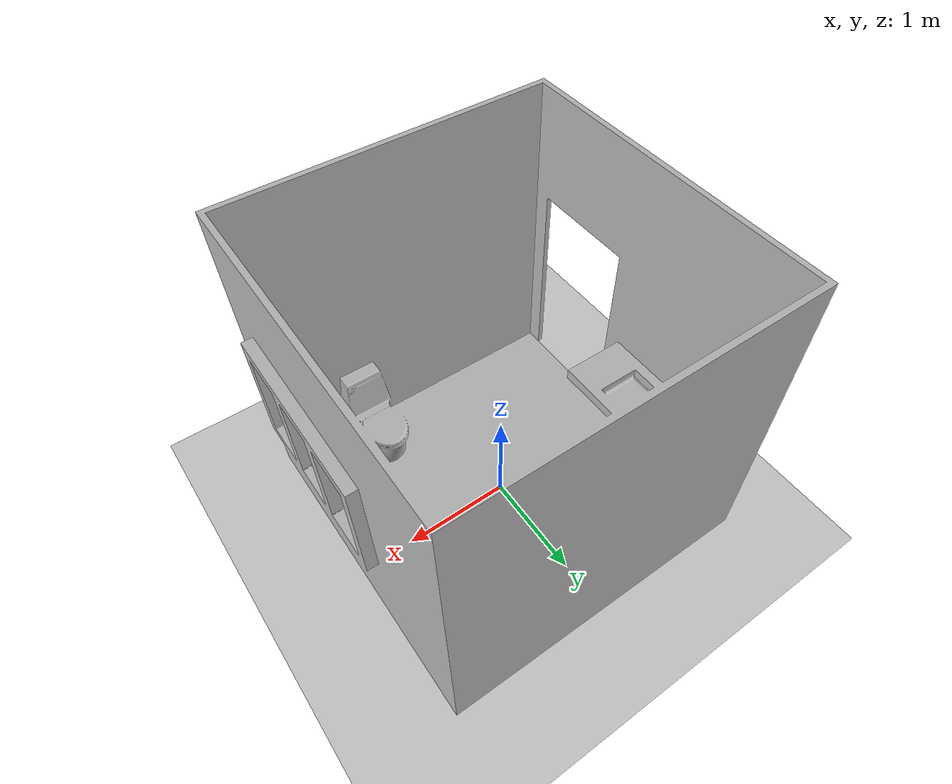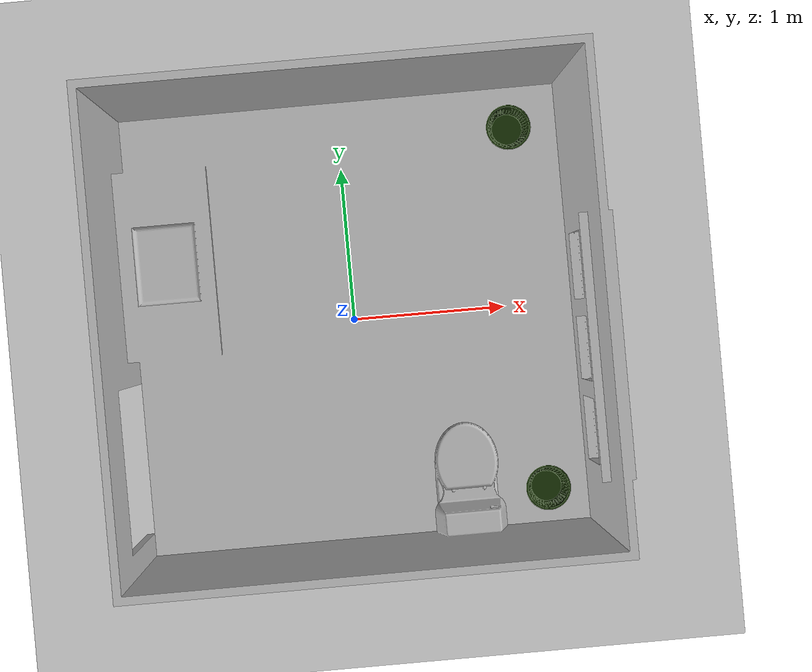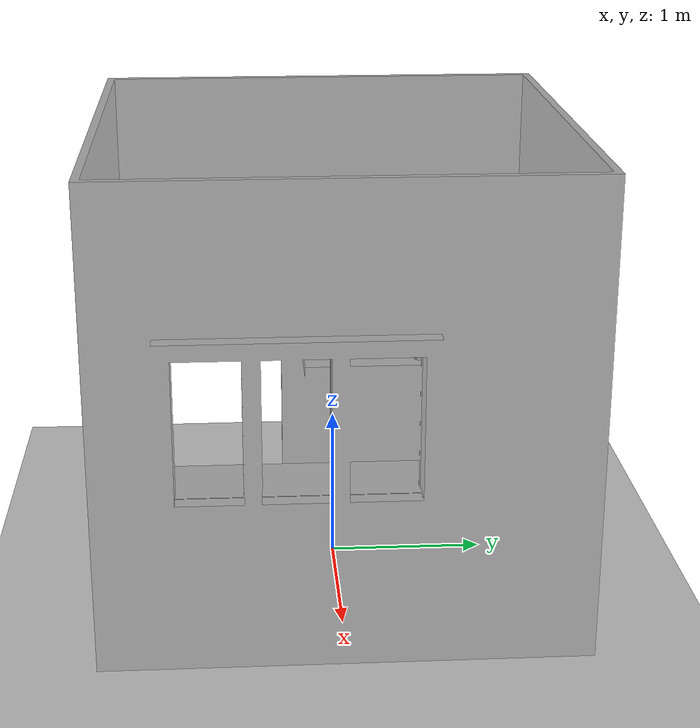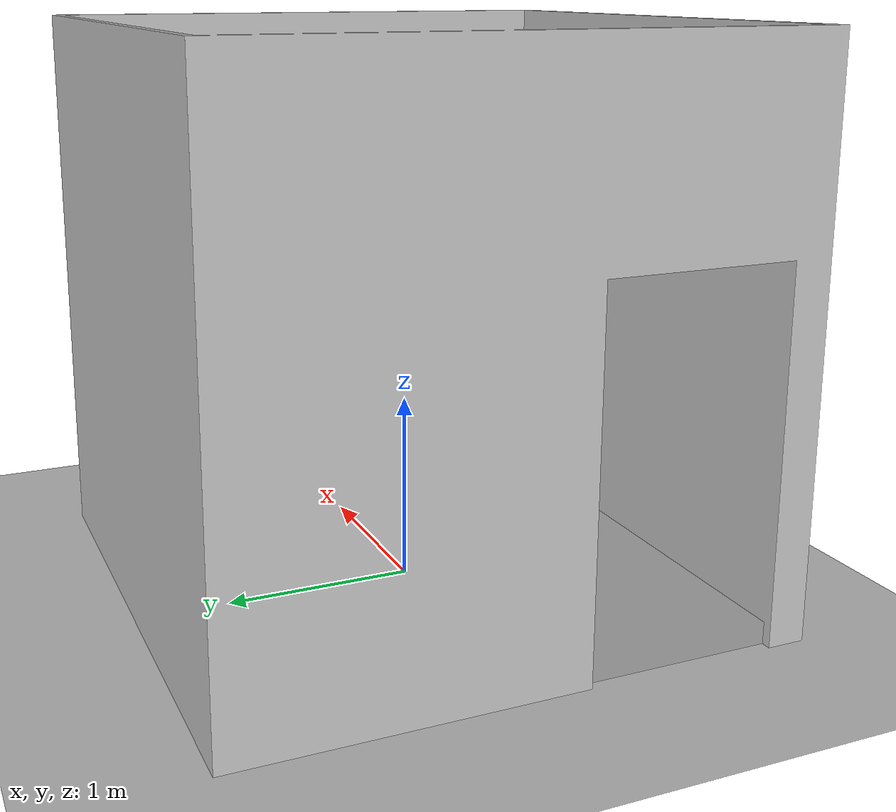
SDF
<sdf version="1.6">
 <world name="config_1">
  <light name="sun" type="directional">
   <pose>0 0 10 0 -0 0</pose>
   <diffuse>0.8 0.8 0.8 1</diffuse>
   <specular>0.2 0.2 0.2 1</specular>
   <attenuation>
    <range>1000</range>
    <constant>0.9</constant>
    <linear>0.01</linear>
    <quadratic>0.001</quadratic>
   </attenuation>
   <direction>-0.5 0.1 -0.9</direction>
  </light>
  <model name="ground_plane">
   <pose>0 0 -0.001 0 -0 0</pose>
   <static>1</static>
   <link name="link">
    <collision name="collision">
     <geometry><plane><normal>0 0 1</normal><size>100 100</size></plane></geometry>
     <surface>
      <contact><collide_bitmask>65535</collide_bitmask></contact>
      <friction><ode><mu>100</mu><mu2>50</mu2></ode></friction>
     </surface>
    </collision>
    <visual name="visual">
     <cast_shadows>0</cast_shadows>
     <geometry><plane><normal>0 0 1</normal><size>100 100</size></plane></geometry>
     <material>
      <script><uri>file://media/materials/scripts/gazebo.material</uri><name>Gazebo/Grey</name></script>
     </material>
    </visual>
   </link>
  </model>
  <scene><ambient>0.1 0.1 0.1 1</ambient><background>0.1 0.1 0.1 1</background><shadows>0</shadows></scene>
  <gravity>0 0 -9.8</gravity>
  <magnetic_field>6e-06 2.3e-05 -4.2e-05</magnetic_field>
  <atmosphere type="adiabatic"/>
  <physics name="default_physics" default="0" type="ode">
   <max_step_size>0.001</max_step_size>
   <real_time_factor>1</real_time_factor>
   <real_time_update_rate>1000</real_time_update_rate>
  </physics>
  <audio><device>default</device></audio>
  <spherical_coordinates>
   <surface_model>EARTH_WGS84</surface_model>
   <latitude_deg>0</latitude_deg>
   <longitude_deg>0</longitude_deg>
   <elevation>0</elevation>
   <heading_deg>0</heading_deg>
  </spherical_coordinates>
  <model name="bathroom_config_1">
   <static>1</static>
   <link name="link">
    <collision name="collision">
     <geometry>
      <mesh><scale>1 1 1</scale><uri>model://bathroom_config_1/meshes/bathroom_config_1.dae</uri></mesh>
     </geometry>
    </collision>
    <visual name="visual">
     <geometry>
      <mesh><scale>1 1 1</scale><uri>model://bathroom_config_1/meshes/bathroom_config_1.dae</uri></mesh>
     </geometry>
    </visual>
   </link>
  </model>
  <model name="waste_bin">
   <static>1</static>
   <link name="link">
    <collision name="collision">
     <geometry><mesh><scale>1 1 1</scale><uri>model://waste_bin/meshes/waste_bin.dae</uri></mesh></geometry>
    </collision>
    <visual name="visual">
     <geometry><mesh><scale>1 1 1</scale><uri>model://waste_bin/meshes/waste_bin.dae</uri></mesh></geometry>
    </visual>
   </link>
   <pose>1.12193 1.17008 0 0 -0 0</pose>
  </model>
  <model name="waste_bin_0">
   <static>1</static>
   <link name="link">
    <collision name="collision">
     <geometry><mesh><scale>1 1 1</scale><uri>model://waste_bin/meshes/waste_bin.dae</uri></mesh></geometry>
    </collision>
    <visual name="visual">
     <geometry><mesh><scale>1 1 1</scale><uri>model://waste_bin/meshes/waste_bin.dae</uri></mesh></geometry>
    </visual>
   </link>
   <pose>1.17592 -1.21214 0 0 -0 0</pose>
  </model>
 </world>
</sdf>
